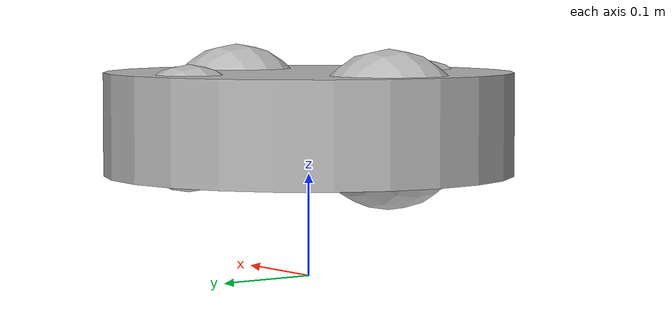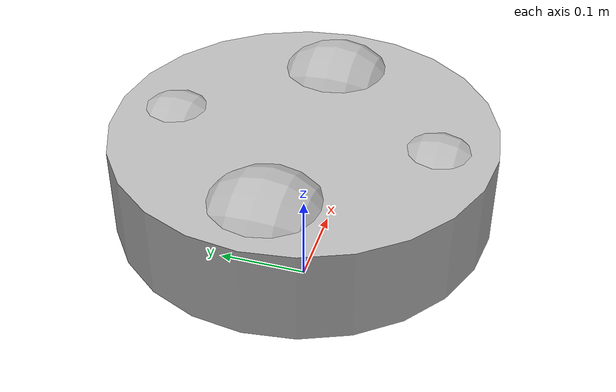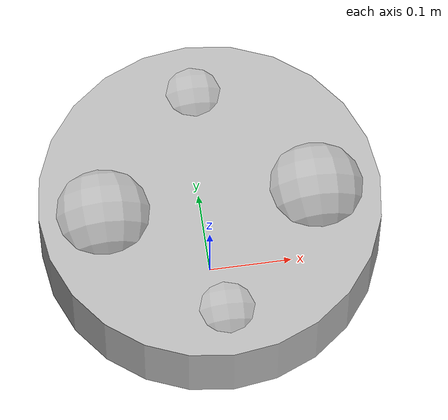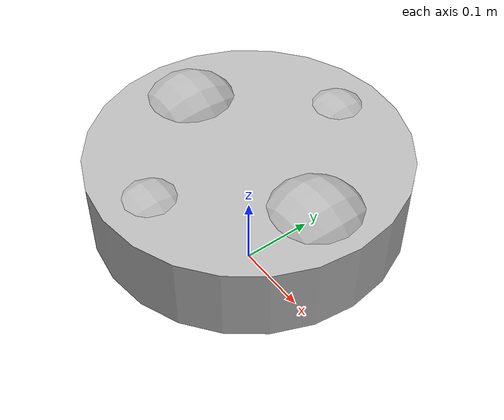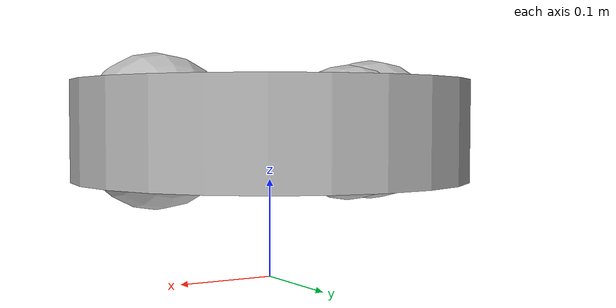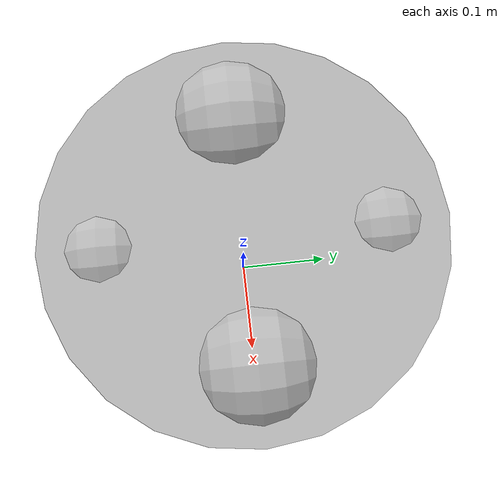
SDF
<sdf version='1.6'>
  <model name='lab03'>
    <link name='base_link'>
      <pose frame=''>0 0 0 0 -0 0</pose>
      <inertial>
        <pose frame=''>0 -0 0.15 0 -0 0</pose>
        <mass>0.11131</mass>
        <inertia>
          <ixx>0.000320415</ixx>
          <ixy>0</ixy>
          <ixz>0</ixz>
          <iyy>0.000187024</iyy>
          <iyz>-4.97258e-17</iyz>
          <izz>0.000320415</izz>
        </inertia>
      </inertial>
      <collision name='base_link_fixed_joint_lump__robot_chassis_collision'>
        <pose frame=''>0 0 0.15 0 -0 0</pose>
        <geometry>
          <cylinder>
            <length>0.1</length>
            <radius>0.2</radius>
          </cylinder>
        </geometry>
      </collision>
      <collision name='base_link_fixed_joint_lump__back_glide_collision_1'>
        <pose frame=''>0 -0.14 0.15 1.5708 -0 0</pose>
        <geometry>
          <sphere>
            <radius>0.06</radius>
          </sphere>
        </geometry>
      </collision>
      <collision name='base_link_fixed_joint_lump__front_glide_collision_2'>
        <pose frame=''>0 0.14 0.15 1.5708 -0 0</pose>
        <geometry>
          <sphere>
            <radius>0.06</radius>
          </sphere>
        </geometry>
      </collision>
      <visual name='base_link_fixed_joint_lump__robot_chassis_visual'>
        <pose frame=''>0 0 0.15 0 -0 0</pose>
        <geometry>
          <cylinder>
            <length>0.1</length>
            <radius>0.2</radius>
          </cylinder>
        </geometry>
      </visual>
      <visual name='base_link_fixed_joint_lump__back_glide_visual_1'>
        <pose frame=''>0 -0.14 0.15 1.5708 -0 0</pose>
        <geometry>
          <sphere>
            <radius>0.06</radius>
          </sphere>
        </geometry>
      </visual>
      <visual name='base_link_fixed_joint_lump__front_glide_visual_2'>
        <pose frame=''>0 0.14 0.15 1.5708 -0 0</pose>
        <geometry>
          <sphere>
            <radius>0.06</radius>
          </sphere>
        </geometry>
      </visual>
    </link>
    <link name='left_wheel'>
      <pose frame=''>0.125 0 0.15 0 -0 0</pose>
      <inertial>
        <pose frame=''>0 0 0 1.5708 -0 0</pose>
        <mass>0.00883573</mass>
        <inertia>
          <ixx>1.24437e-05</ixx>
          <ixy>0</ixy>
          <ixz>0</ixz>
          <iyy>1.24437e-05</iyy>
          <iyz>0</iyz>
          <izz>2.48505e-05</izz>
        </inertia>
      </inertial>
      <collision name='left_wheel_collision'>
        <pose frame=''>0 0 0 1.5708 -0 0</pose>
        <geometry>
          <sphere>
            <radius>0.075</radius>
          </sphere>
        </geometry>
      </collision>
      <visual name='left_wheel_visual'>
        <pose frame=''>0 0 0 1.5708 -0 0</pose>
        <geometry>
          <sphere>
            <radius>0.075</radius>
          </sphere>
        </geometry>
      </visual>
    </link>
    <joint name='left_wheel_joint' type='revolute'>
      <child>left_wheel</child>
      <parent>base_link</parent>
      <axis>
        <xyz>0 1 0</xyz>
        <limit>
          <lower>-1e+16</lower>
          <upper>1e+16</upper>
        </limit>
        <dynamics>
          <spring_reference>0</spring_reference>
          <spring_stiffness>0</spring_stiffness>
        </dynamics>
        <use_parent_model_frame>1</use_parent_model_frame>
      </axis>
    </joint>
    <link name='right_wheel'>
      <pose frame=''>-0.125 0 0.15 0 -0 0</pose>
      <inertial>
        <pose frame=''>0 0 0 1.5708 -0 0</pose>
        <mass>0.00883573</mass>
        <inertia>
          <ixx>1.24437e-05</ixx>
          <ixy>0</ixy>
          <ixz>0</ixz>
          <iyy>1.24437e-05</iyy>
          <iyz>0</iyz>
          <izz>2.48505e-05</izz>
        </inertia>
      </inertial>
      <collision name='right_wheel_collision'>
        <pose frame=''>0 0 0 1.5708 -0 0</pose>
        <geometry>
          <sphere>
            <radius>0.075</radius>
          </sphere>
        </geometry>
      </collision>
      <visual name='right_wheel_visual'>
        <pose frame=''>0 0 0 1.5708 -0 0</pose>
        <geometry>
          <sphere>
            <radius>0.075</radius>
          </sphere>
        </geometry>
      </visual>
    </link>
    <joint name='right_wheel_joint' type='revolute'>
      <child>right_wheel</child>
      <parent>base_link</parent>
      <axis>
        <xyz>0 1 0</xyz>
        <limit>
          <lower>-1e+16</lower>
          <upper>1e+16</upper>
        </limit>
        <dynamics>
          <spring_reference>0</spring_reference>
          <spring_stiffness>0</spring_stiffness>
        </dynamics>
        <use_parent_model_frame>1</use_parent_model_frame>
      </axis>
    </joint>
    <static>0</static>
    <plugin name='gazebo_ros_control' filename='libgazebo_ros_control.so'>
      <robotNamespace>/lab03</robotNamespace>
    </plugin>
  </model>
</sdf>
